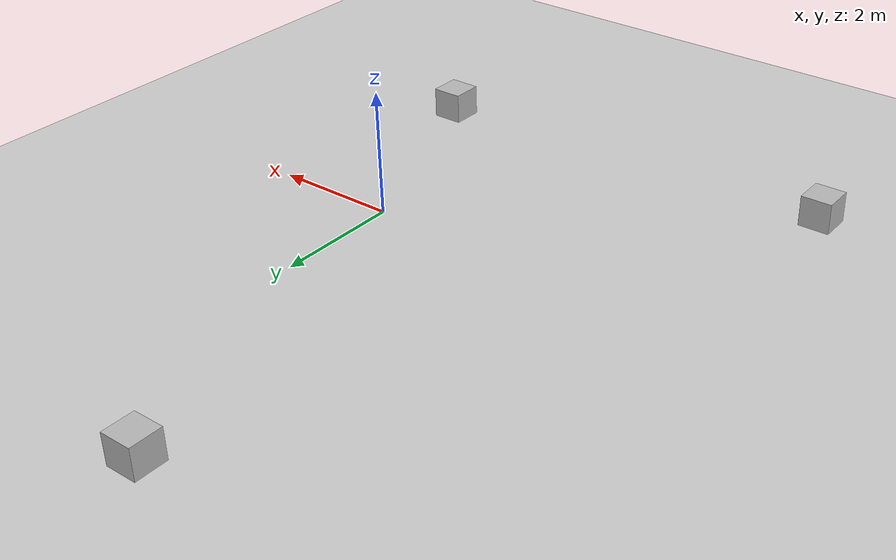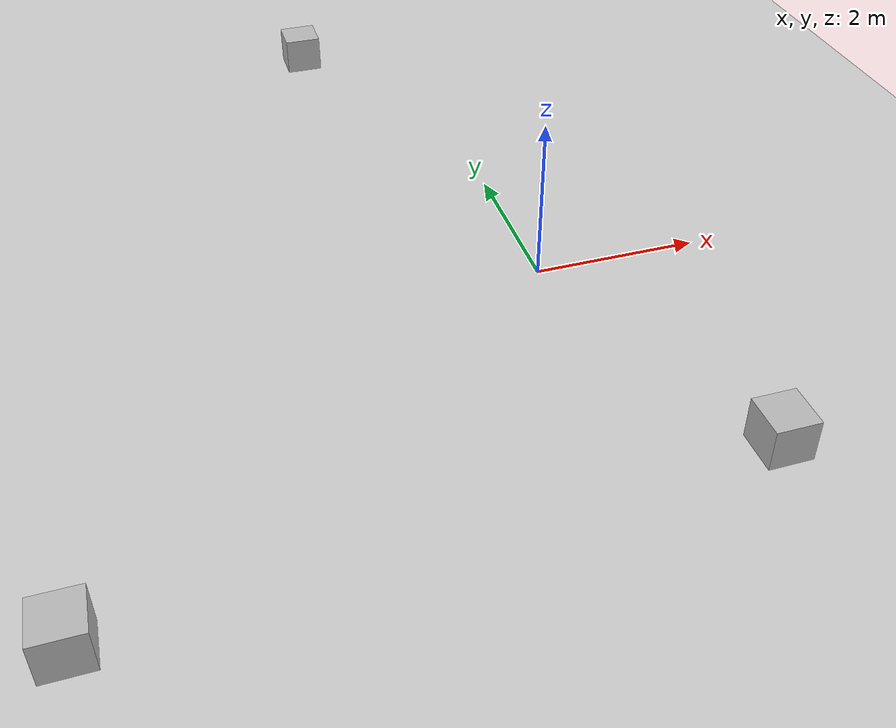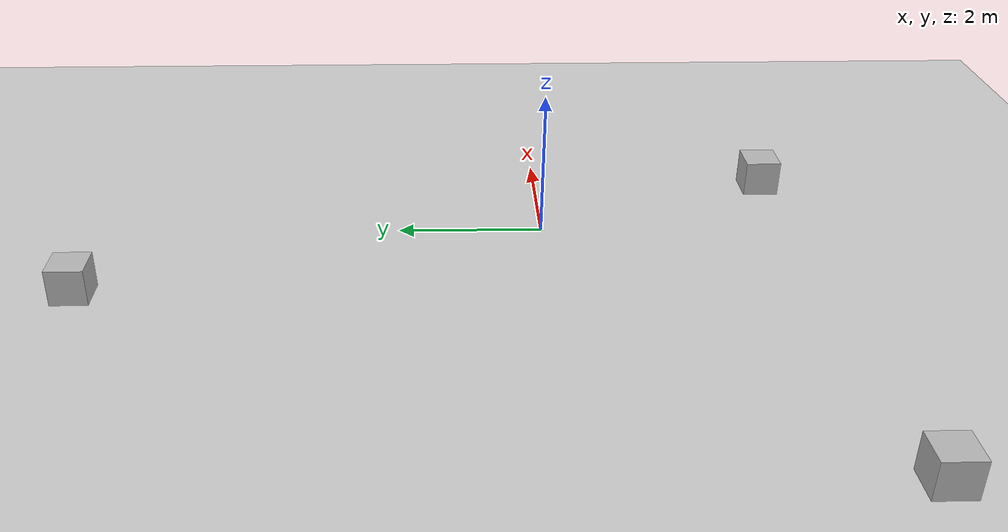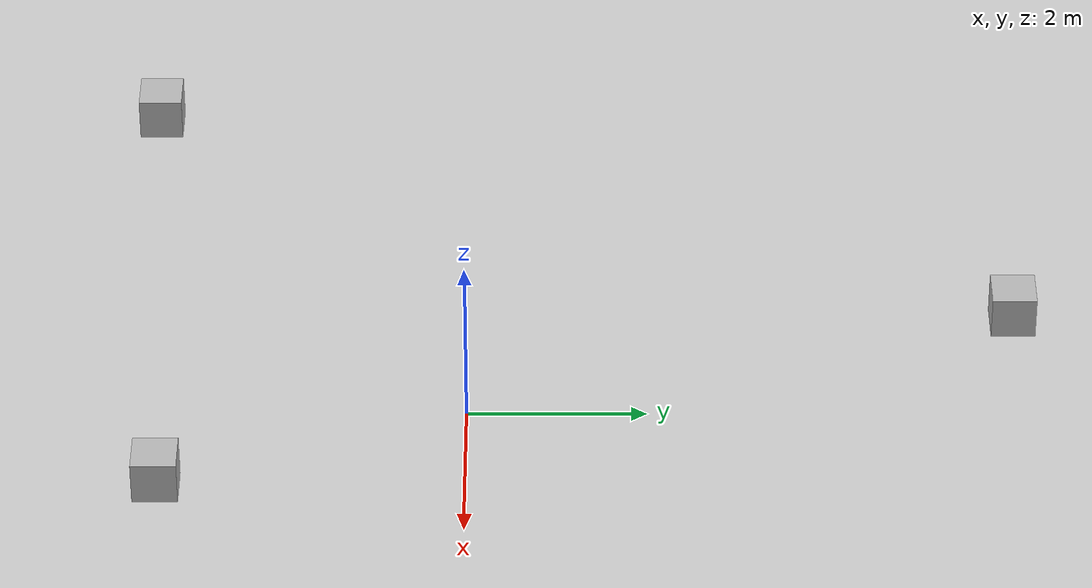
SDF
<sdf version="1.6">
 <world name="default">
  <light name="sun" type="directional">
   <pose>0 0 10 0 -0 0</pose>
   <diffuse>0.8 0.8 0.8 1</diffuse>
   <specular>0.2 0.2 0.2 1</specular>
   <attenuation>
    <range>1000</range>
    <constant>0.9</constant>
    <linear>0.01</linear>
    <quadratic>0.001</quadratic>
   </attenuation>
   <direction>-0.5 0.1 -0.9</direction>
  </light>
  <model name="ground_plane">
   <static>1</static>
   <link name="link">
    <collision name="collision">
     <geometry><plane><normal>0 0 1</normal><size>100 100</size></plane></geometry>
     <surface>
      <contact><collide_bitmask>65535</collide_bitmask></contact>
      <friction><ode><mu>100</mu><mu2>50</mu2></ode></friction>
     </surface>
    </collision>
    <visual name="visual">
     <cast_shadows>0</cast_shadows>
     <geometry><plane><normal>0 0 1</normal><size>100 100</size></plane></geometry>
     <material>
      <script><uri>file://media/materials/scripts/gazebo.material</uri><name>Gazebo/Grey</name></script>
     </material>
    </visual>
   </link>
  </model>
  <gravity>0 0 -9.8</gravity>
  <magnetic_field>6e-06 2.3e-05 -4.2e-05</magnetic_field>
  <atmosphere type="adiabatic"/>
  <physics name="default_physics" default="0" type="ode">
   <max_step_size>0.001</max_step_size>
   <real_time_factor>1</real_time_factor>
   <real_time_update_rate>1000</real_time_update_rate>
  </physics>
  <scene><ambient>0.4 0.4 0.4 1</ambient><background>0.7 0.7 0.7 1</background><shadows>1</shadows></scene>
  <audio><device>default</device></audio>
  <spherical_coordinates>
   <surface_model>EARTH_WGS84</surface_model>
   <latitude_deg>0</latitude_deg>
   <longitude_deg>0</longitude_deg>
   <elevation>0</elevation>
   <heading_deg>0</heading_deg>
  </spherical_coordinates>
  <model name="aruco_box">
   <pose>1.27988 -3.37255 0.25 -1.5708 0 0</pose>
   <link name="link">
    <inertial>
     <mass>1</mass>
     <inertia>
      <ixx>0.166667</ixx>
      <ixy>0</ixy>
      <ixz>0</ixz>
      <iyy>0.166667</iyy>
      <iyz>0</iyz>
      <izz>0.166667</izz>
     </inertia>
    </inertial>
    <collision name="collision"><geometry><box><size>0.5 0.5 0.5</size></box></geometry></collision>
    <visual name="aruco_box_mesh">
     <geometry><mesh><uri>model://aruco_box/model.dae</uri><scale>0.25 0.25 0.25</scale></mesh></geometry>
    </visual>
   </link>
  </model>
  <model name="aruco_box_0">
   <pose>-1.6471 6.16185 0.25 -1.5708 -0 0</pose>
   <link name="link">
    <inertial>
     <mass>1</mass>
     <inertia>
      <ixx>0.166667</ixx>
      <ixy>0</ixy>
      <ixz>0</ixz>
      <iyy>0.166667</iyy>
      <iyz>0</iyz>
      <izz>0.166667</izz>
     </inertia>
    </inertial>
    <collision name="collision"><geometry><box><size>0.5 0.5 0.5</size></box></geometry></collision>
    <visual name="aruco_box_mesh">
     <geometry><mesh><uri>model://aruco_box/model.dae</uri><scale>0.25 0.25 0.25</scale></mesh></geometry>
    </visual>
   </link>
  </model>
  <model name="aruco_box_1">
   <pose>-5.53344 -3.69802 0.25 -1.5708 -0 0</pose>
   <link name="link">
    <inertial>
     <mass>1</mass>
     <inertia>
      <ixx>0.166667</ixx>
      <ixy>0</ixy>
      <ixz>0</ixz>
      <iyy>0.166667</iyy>
      <iyz>0</iyz>
      <izz>0.166667</izz>
     </inertia>
    </inertial>
    <collision name="collision"><geometry><box><size>0.5 0.5 0.5</size></box></geometry></collision>
    <visual name="aruco_box_mesh">
     <geometry><mesh><uri>model://aruco_box/model.dae</uri><scale>0.25 0.25 0.25</scale></mesh></geometry>
    </visual>
   </link>
  </model>
 </world>
</sdf>
